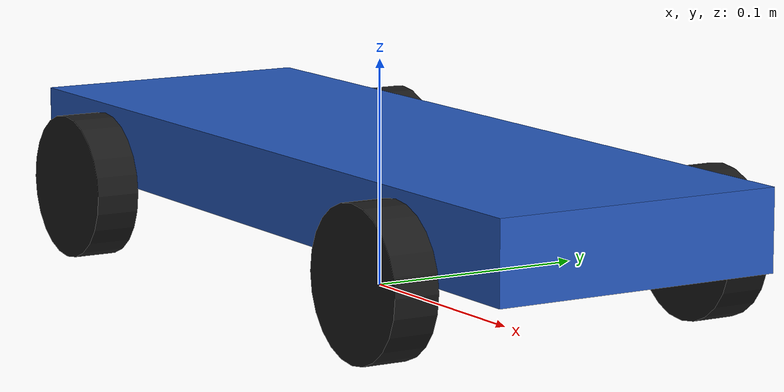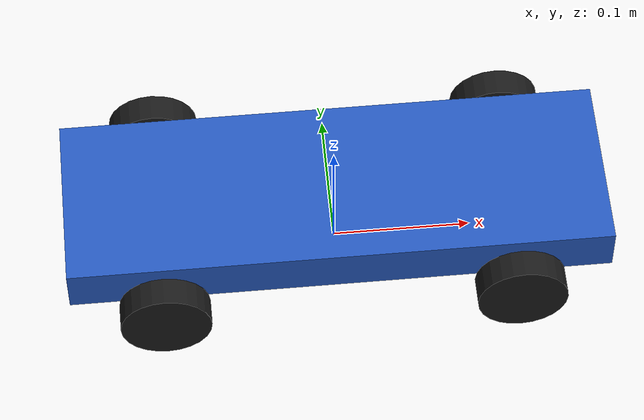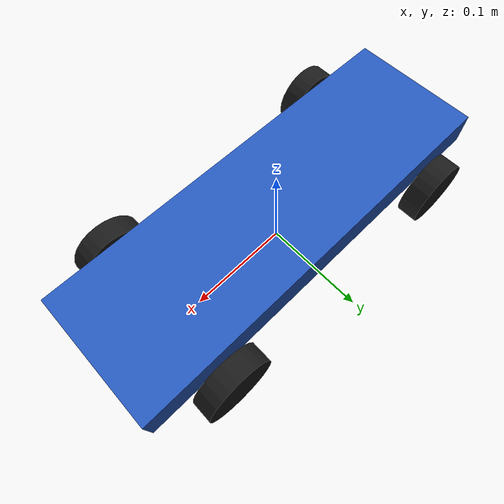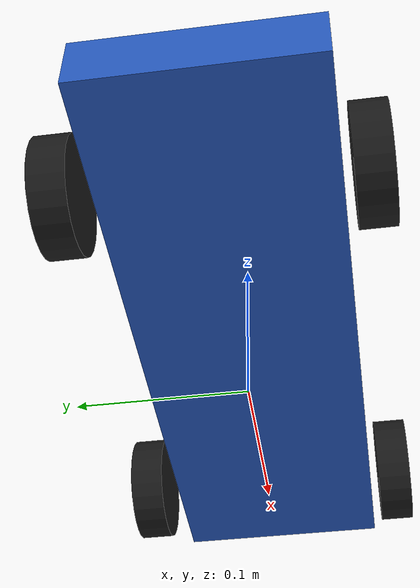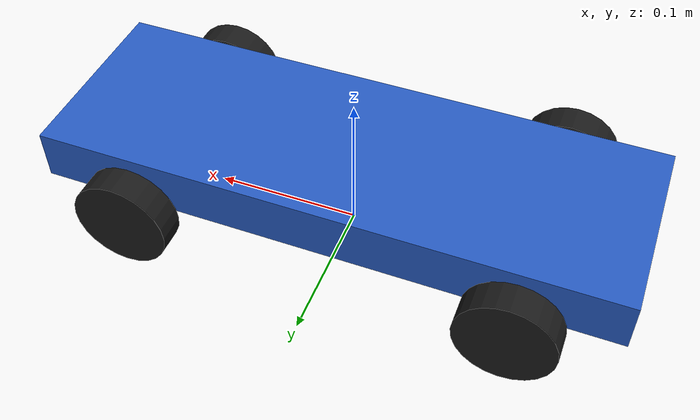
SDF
<?xml version="1.0" ?>
<sdf version="1.9">
  <model name="vehicle">
    <link name="chassis">
      <pose>0 0 0.05 0 0 0</pose>
      <inertial>
        <mass>2.5</mass>
        <inertia>
          <ixx>0.010</ixx>
          <ixy>0.0</ixy>
          <ixz>0.0</ixz>
          <iyy>0.020</iyy>
          <iyz>0.0</iyz>
          <izz>0.025</izz>
        </inertia>
      </inertial>
      <visual name="visual">
        <geometry>
          <box>
            <size>0.39 0.13 0.035</size>
          </box>
        </geometry>
        <material>
          <ambient>0.15 0.35 0.75 1</ambient>
          <diffuse>0.15 0.35 0.75 1</diffuse>
          <specular>0.1 0.1 0.2 1</specular>
        </material>
      </visual>
      <collision name="collision">
        <geometry>
          <box>
            <size>0.39 0.13 0.035</size>
          </box>
        </geometry>
      </collision>
      <sensor name="chassis_contact" type="contact">
        <always_on>true</always_on>
        <update_rate>100</update_rate>
        <topic>/vehicle/chassis_contacts</topic>
        <contact>
          <collision>collision</collision>
        </contact>
      </sensor>
    </link>

    <link name="front_left_wheel">
      <pose>0.1275 0.08 0.0325 -1.5708 0 0</pose>
      <inertial>
        <mass>0.15</mass>
        <inertia>
          <ixx>0.0002</ixx>
          <ixy>0.0</ixy>
          <ixz>0.0</ixz>
          <iyy>0.0002</iyy>
          <iyz>0.0</iyz>
          <izz>0.0003</izz>
        </inertia>
      </inertial>
      <visual name="visual">
        <geometry>
          <cylinder>
            <radius>0.0325</radius>
            <length>0.02</length>
          </cylinder>
        </geometry>
        <material>
          <ambient>0.1 0.1 0.1 1</ambient>
          <diffuse>0.1 0.1 0.1 1</diffuse>
        </material>
      </visual>
      <collision name="collision">
        <geometry>
          <cylinder>
            <radius>0.0325</radius>
            <length>0.02</length>
          </cylinder>
        </geometry>
        <surface>
          <friction>
            <ode>
              <mu>1.5</mu>
              <mu2>0.5</mu2>
            </ode>
          </friction>
        </surface>
      </collision>
      <sensor name="contact_sensor" type="contact">
        <always_on>true</always_on>
        <update_rate>100</update_rate>
        <topic>/vehicle/front_left_wheel_contacts</topic>
        <contact>
          <collision>collision</collision>
        </contact>
      </sensor>
    </link>

    <link name="front_right_wheel">
      <pose>0.1275 -0.08 0.0325 -1.5708 0 0</pose>
      <inertial>
        <mass>0.15</mass>
        <inertia>
          <ixx>0.0002</ixx>
          <ixy>0.0</ixy>
          <ixz>0.0</ixz>
          <iyy>0.0002</iyy>
          <iyz>0.0</iyz>
          <izz>0.0003</izz>
        </inertia>
      </inertial>
      <visual name="visual">
        <geometry>
          <cylinder>
            <radius>0.0325</radius>
            <length>0.02</length>
          </cylinder>
        </geometry>
        <material>
          <ambient>0.1 0.1 0.1 1</ambient>
          <diffuse>0.1 0.1 0.1 1</diffuse>
        </material>
      </visual>
      <collision name="collision">
        <geometry>
          <cylinder>
            <radius>0.0325</radius>
            <length>0.02</length>
          </cylinder>
        </geometry>
        <surface>
          <friction>
            <ode>
              <mu>1.5</mu>
              <mu2>0.5</mu2>
            </ode>
          </friction>
        </surface>
      </collision>
      <sensor name="contact_sensor" type="contact">
        <always_on>true</always_on>
        <update_rate>100</update_rate>
        <topic>/vehicle/front_right_wheel_contacts</topic>
        <contact>
          <collision>collision</collision>
        </contact>
      </sensor>
    </link>

    <link name="rear_left_wheel">
      <pose>-0.1275 0.08 0.0325 -1.5708 0 0</pose>
      <inertial>
        <mass>0.15</mass>
        <inertia>
          <ixx>0.0002</ixx>
          <ixy>0.0</ixy>
          <ixz>0.0</ixz>
          <iyy>0.0002</iyy>
          <iyz>0.0</iyz>
          <izz>0.0003</izz>
        </inertia>
      </inertial>
      <visual name="visual">
        <geometry>
          <cylinder>
            <radius>0.0325</radius>
            <length>0.02</length>
          </cylinder>
        </geometry>
        <material>
          <ambient>0.1 0.1 0.1 1</ambient>
          <diffuse>0.1 0.1 0.1 1</diffuse>
        </material>
      </visual>
      <collision name="collision">
        <geometry>
          <cylinder>
            <radius>0.0325</radius>
            <length>0.02</length>
          </cylinder>
        </geometry>
        <surface>
          <friction>
            <ode>
              <mu>1.5</mu>
              <mu2>0.5</mu2>
            </ode>
          </friction>
        </surface>
      </collision>
      <sensor name="contact_sensor" type="contact">
        <always_on>true</always_on>
        <update_rate>100</update_rate>
        <topic>/vehicle/rear_left_wheel_contacts</topic>
        <contact>
          <collision>collision</collision>
        </contact>
      </sensor>
    </link>

    <link name="rear_right_wheel">
      <pose>-0.1275 -0.08 0.0325 -1.5708 0 0</pose>
      <inertial>
        <mass>0.15</mass>
        <inertia>
          <ixx>0.0002</ixx>
          <ixy>0.0</ixy>
          <ixz>0.0</ixz>
          <iyy>0.0002</iyy>
          <iyz>0.0</iyz>
          <izz>0.0003</izz>
        </inertia>
      </inertial>
      <visual name="visual">
        <geometry>
          <cylinder>
            <radius>0.0325</radius>
            <length>0.02</length>
          </cylinder>
        </geometry>
        <material>
          <ambient>0.1 0.1 0.1 1</ambient>
          <diffuse>0.1 0.1 0.1 1</diffuse>
        </material>
      </visual>
      <collision name="collision">
        <geometry>
          <cylinder>
            <radius>0.0325</radius>
            <length>0.02</length>
          </cylinder>
        </geometry>
        <surface>
          <friction>
            <ode>
              <mu>1.5</mu>
              <mu2>0.5</mu2>
            </ode>
          </friction>
        </surface>
      </collision>
      <sensor name="contact_sensor" type="contact">
        <always_on>true</always_on>
        <update_rate>100</update_rate>
        <topic>/vehicle/rear_right_wheel_contacts</topic>
        <contact>
          <collision>collision</collision>
        </contact>
      </sensor>
    </link>

    <link name="front_left_steering_link">
      <pose>0.1275 0.08 0.0325 0 0 0</pose>
      <inertial>
        <mass>0.02</mass>
        <inertia>
          <ixx>0.00001</ixx>
          <ixy>0.0</ixy>
          <ixz>0.0</ixz>
          <iyy>0.00001</iyy>
          <iyz>0.0</iyz>
          <izz>0.00001</izz>
        </inertia>
      </inertial>
      <visual name="visual">
        <geometry>
          <cylinder>
            <radius>0.008</radius>
            <length>0.001</length>
          </cylinder>
        </geometry>
      </visual>
    </link>

    <link name="front_right_steering_link">
      <pose>0.1275 -0.08 0.0325 0 0 0</pose>
      <inertial>
        <mass>0.02</mass>
        <inertia>
          <ixx>0.00001</ixx>
          <ixy>0.0</ixy>
          <ixz>0.0</ixz>
          <iyy>0.00001</iyy>
          <iyz>0.0</iyz>
          <izz>0.00001</izz>
        </inertia>
      </inertial>
      <visual name="visual">
        <geometry>
          <cylinder>
            <radius>0.008</radius>
            <length>0.001</length>
          </cylinder>
        </geometry>
      </visual>
    </link>

    <joint name="front_left_steering_joint" type="revolute">
      <parent>chassis</parent>
      <child>front_left_steering_link</child>
      <axis>
        <xyz>0 0 1</xyz>
        <limit>
          <lower>-0.6108652</lower>
          <upper>0.6108652</upper>
          <velocity>1.570796</velocity>
          <effort>2.0</effort>
        </limit>
      </axis>
    </joint>

    <joint name="front_right_steering_joint" type="revolute">
      <parent>chassis</parent>
      <child>front_right_steering_link</child>
      <axis>
        <xyz>0 0 1</xyz>
        <limit>
          <lower>-0.6108652</lower>
          <upper>0.6108652</upper>
          <velocity>1.570796</velocity>
          <effort>2.0</effort>
        </limit>
      </axis>
    </joint>

    <joint name="front_left_wheel_joint" type="revolute">
      <parent>front_left_steering_link</parent>
      <child>front_left_wheel</child>
      <axis>
        <xyz>0 0 1</xyz>
        <limit>
          <lower>-1.79769e+308</lower>
          <upper>1.79769e+308</upper>
        </limit>
      </axis>
    </joint>

    <joint name="front_right_wheel_joint" type="revolute">
      <parent>front_right_steering_link</parent>
      <child>front_right_wheel</child>
      <axis>
        <xyz>0 0 1</xyz>
        <limit>
          <lower>-1.79769e+308</lower>
          <upper>1.79769e+308</upper>
        </limit>
      </axis>
    </joint>

    <joint name="rear_left_wheel_joint" type="revolute">
      <parent>chassis</parent>
      <child>rear_left_wheel</child>
      <axis>
        <xyz>0 0 1</xyz>
        <limit>
          <lower>-1.79769e+308</lower>
          <upper>1.79769e+308</upper>
        </limit>
      </axis>
    </joint>

    <joint name="rear_right_wheel_joint" type="revolute">
      <parent>chassis</parent>
      <child>rear_right_wheel</child>
      <axis>
        <xyz>0 0 1</xyz>
        <limit>
          <lower>-1.79769e+308</lower>
          <upper>1.79769e+308</upper>
        </limit>
      </axis>
    </joint>

    <plugin
      filename="gz-sim-joint-state-publisher-system"
      name="gz::sim::systems::JointStatePublisher">
    </plugin>

    <plugin
      filename="gz-sim-ackermann-steering-system"
      name="gz::sim::systems::AckermannSteering">
      <left_joint>front_left_wheel_joint</left_joint>
      <left_joint>rear_left_wheel_joint</left_joint>
      <right_joint>front_right_wheel_joint</right_joint>
      <right_joint>rear_right_wheel_joint</right_joint>
      <left_steering_joint>front_left_steering_joint</left_steering_joint>
      <right_steering_joint>front_right_steering_joint</right_steering_joint>
      <kingpin_width>0.16</kingpin_width>
      <steering_limit>0.6108652</steering_limit>
      <wheel_base>0.255</wheel_base>
      <wheel_separation>0.16</wheel_separation>
      <wheel_radius>0.0325</wheel_radius>
      <min_velocity>-1.5</min_velocity>
      <max_velocity>1.5</max_velocity>
      <min_acceleration>-3.0</min_acceleration>
      <max_acceleration>3.0</max_acceleration>
    </plugin>
  </model>
</sdf>
